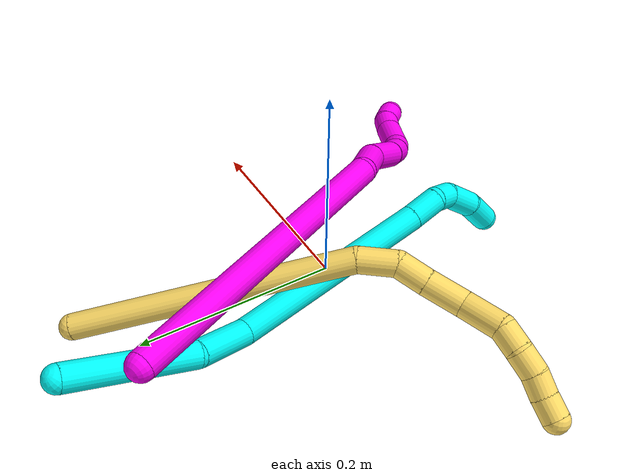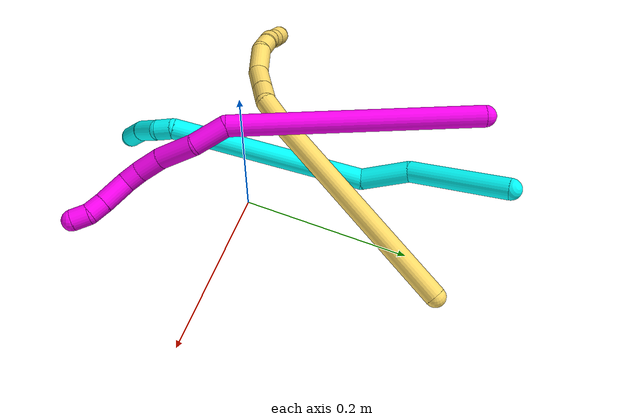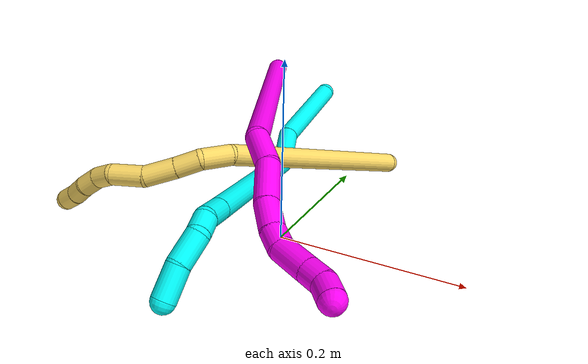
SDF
<sdf version="1.7">
 <world name="default">
  <model name="3">
   <static>0</static>
   <link name="3">
    <collision name="collision-cylinder-e_1_1_4">
     <pose>-0.000937 -0.038021 -0.045447 2.44493 -0.015808 -0.043526</pose>
     <geometry><cylinder><radius>0.0125</radius><length>0.118523</length></cylinder></geometry>
     <surface>
      <friction><ode><mu>1.16</mu><mu2>1.16</mu2><slip1>0</slip1><slip2>0</slip2></ode></friction>
      <contact><ode><kp>1e+06</kp><kd>1</kd><max_vel>0</max_vel><min_depth>0.001</min_depth></ode></contact>
     </surface>
    </collision>
    <visual name="visual-cylinder-e_1_1_4">
     <pose>-0.000937 -0.038021 -0.045447 2.44493 -0.015808 -0.043526</pose>
     <geometry><cylinder><radius>0.0125</radius><length>0.118523</length></cylinder></geometry>
     <material><ambient>0.003922 1 0.996078 1</ambient></material>
    </visual>
    <collision name="collision-cylinder-e_2_4_5">
     <pose>0.008036 -0.092877 -0.112702 2.48419 0.345266 0.945183</pose>
     <geometry><cylinder><radius>0.0125</radius><length>0.058556</length></cylinder></geometry>
     <surface>
      <friction><ode><mu>1.16</mu><mu2>1.16</mu2><slip1>0</slip1><slip2>0</slip2></ode></friction>
      <contact><ode><kp>1e+06</kp><kd>1</kd><max_vel>0</max_vel><min_depth>0.001</min_depth></ode></contact>
     </surface>
    </collision>
    <visual name="visual-cylinder-e_2_4_5">
     <pose>0.008036 -0.092877 -0.112702 2.48419 0.345266 0.945183</pose>
     <geometry><cylinder><radius>0.0125</radius><length>0.058556</length></cylinder></geometry>
     <material><ambient>0.003922 1 0.996078 1</ambient></material>
    </visual>
    <collision name="collision-cylinder-e_3_5_6">
     <pose>0.030408 -0.200261 -0.176961 2.00918 0.12399 0.194699</pose>
     <geometry><cylinder><radius>0.0125</radius><length>0.201559</length></cylinder></geometry>
     <surface>
      <friction><ode><mu>1.16</mu><mu2>1.16</mu2><slip1>0</slip1><slip2>0</slip2></ode></friction>
      <contact><ode><kp>1e+06</kp><kd>1</kd><max_vel>0</max_vel><min_depth>0.001</min_depth></ode></contact>
     </surface>
    </collision>
    <visual name="visual-cylinder-e_3_5_6">
     <pose>0.030408 -0.200261 -0.176961 2.00918 0.12399 0.194699</pose>
     <geometry><cylinder><radius>0.0125</radius><length>0.201559</length></cylinder></geometry>
     <material><ambient>0.003922 1 0.996078 1</ambient></material>
    </visual>
    <collision name="collision-cylinder-e_4_6_7">
     <pose>0.045334 -0.305627 -0.225452 1.95795 0.15269 0.226617</pose>
     <geometry><cylinder><radius>0.0125</radius><length>0.032379</length></cylinder></geometry>
     <surface>
      <friction><ode><mu>1.16</mu><mu2>1.16</mu2><slip1>0</slip1><slip2>0</slip2></ode></friction>
      <contact><ode><kp>1e+06</kp><kd>1</kd><max_vel>0</max_vel><min_depth>0.001</min_depth></ode></contact>
     </surface>
    </collision>
    <visual name="visual-cylinder-e_4_6_7">
     <pose>0.045334 -0.305627 -0.225452 1.95795 0.15269 0.226617</pose>
     <geometry><cylinder><radius>0.0125</radius><length>0.032379</length></cylinder></geometry>
     <material><ambient>0.003922 1 0.996078 1</ambient></material>
    </visual>
    <collision name="collision-cylinder-e_5_7_8">
     <pose>0.050495 -0.327089 -0.239216 2.43105 0.258946 0.675014</pose>
     <geometry><cylinder><radius>0.0125</radius><length>0.021079</length></cylinder></geometry>
     <surface>
      <friction><ode><mu>1.16</mu><mu2>1.16</mu2><slip1>0</slip1><slip2>0</slip2></ode></friction>
      <contact><ode><kp>1e+06</kp><kd>1</kd><max_vel>0</max_vel><min_depth>0.001</min_depth></ode></contact>
     </surface>
    </collision>
    <visual name="visual-cylinder-e_5_7_8">
     <pose>0.050495 -0.327089 -0.239216 2.43105 0.258946 0.675014</pose>
     <geometry><cylinder><radius>0.0125</radius><length>0.021079</length></cylinder></geometry>
     <material><ambient>0.003922 1 0.996078 1</ambient></material>
    </visual>
    <collision name="collision-cylinder-e_6_8_9">
     <pose>0.052001 -0.33937 -0.262785 2.79987 -0.070797 -0.404866</pose>
     <geometry><cylinder><radius>0.0125</radius><length>0.033722</length></cylinder></geometry>
     <surface>
      <friction><ode><mu>1.16</mu><mu2>1.16</mu2><slip1>0</slip1><slip2>0</slip2></ode></friction>
      <contact><ode><kp>1e+06</kp><kd>1</kd><max_vel>0</max_vel><min_depth>0.001</min_depth></ode></contact>
     </surface>
    </collision>
    <visual name="visual-cylinder-e_6_8_9">
     <pose>0.052001 -0.33937 -0.262785 2.79987 -0.070797 -0.404866</pose>
     <geometry><cylinder><radius>0.0125</radius><length>0.033722</length></cylinder></geometry>
     <material><ambient>0.003922 1 0.996078 1</ambient></material>
    </visual>
    <collision name="collision-cylinder-e_7_9_2">
     <pose>0.050962 -0.346876 -0.29562 3.032 0.00895 0.1628</pose>
     <geometry><cylinder><radius>0.0125</radius><length>0.034182</length></cylinder></geometry>
     <surface>
      <friction><ode><mu>1.16</mu><mu2>1.16</mu2><slip1>0</slip1><slip2>0</slip2></ode></friction>
      <contact><ode><kp>1e+06</kp><kd>1</kd><max_vel>0</max_vel><min_depth>0.001</min_depth></ode></contact>
     </surface>
    </collision>
    <visual name="visual-cylinder-e_7_9_2">
     <pose>0.050962 -0.346876 -0.29562 3.032 0.00895 0.1628</pose>
     <geometry><cylinder><radius>0.0125</radius><length>0.034182</length></cylinder></geometry>
     <material><ambient>0.003922 1 0.996078 1</ambient></material>
    </visual>
    <collision name="collision-sphere-2">
     <pose>0.051115 -0.348745 -0.312607 0 -0 0</pose>
     <geometry><sphere><radius>0.0125</radius></sphere></geometry>
     <surface>
      <friction><ode><mu>1.16</mu><mu2>1.16</mu2><slip1>0</slip1><slip2>0</slip2></ode></friction>
      <contact><ode><kp>1e+06</kp><kd>1</kd><max_vel>0</max_vel><min_depth>0.001</min_depth></ode></contact>
     </surface>
    </collision>
    <visual name="visual-sphere-2">
     <pose>0.051115 -0.348745 -0.312607 0 -0 0</pose>
     <geometry><sphere><radius>0.0125</radius></sphere></geometry>
     <material><ambient>0.003922 1 0.996078 1</ambient></material>
    </visual>
    <collision name="collision-sphere-9">
     <pose>0.050809 -0.345007 -0.278632 0 -0 0</pose>
     <geometry><sphere><radius>0.0125</radius></sphere></geometry>
     <surface>
      <friction><ode><mu>1.16</mu><mu2>1.16</mu2><slip1>0</slip1><slip2>0</slip2></ode></friction>
      <contact><ode><kp>1e+06</kp><kd>1</kd><max_vel>0</max_vel><min_depth>0.001</min_depth></ode></contact>
     </surface>
    </collision>
    <visual name="visual-sphere-9">
     <pose>0.050809 -0.345007 -0.278632 0 -0 0</pose>
     <geometry><sphere><radius>0.0125</radius></sphere></geometry>
     <material><ambient>0.003922 1 0.996078 1</ambient></material>
    </visual>
    <collision name="collision-sphere-4">
     <pose>-0.001874 -0.076042 -0.090894 0 -0 0</pose>
     <geometry><sphere><radius>0.0125</radius></sphere></geometry>
     <surface>
      <friction><ode><mu>1.16</mu><mu2>1.16</mu2><slip1>0</slip1><slip2>0</slip2></ode></friction>
      <contact><ode><kp>1e+06</kp><kd>1</kd><max_vel>0</max_vel><min_depth>0.001</min_depth></ode></contact>
     </surface>
    </collision>
    <visual name="visual-sphere-4">
     <pose>-0.001874 -0.076042 -0.090894 0 -0 0</pose>
     <geometry><sphere><radius>0.0125</radius></sphere></geometry>
     <material><ambient>0.003922 1 0.996078 1</ambient></material>
    </visual>
    <collision name="collision-sphere-1">
     <geometry><sphere><radius>0.0125</radius></sphere></geometry>
     <surface>
      <friction><ode><mu>1.16</mu><mu2>1.16</mu2><slip1>0</slip1><slip2>0</slip2></ode></friction>
      <contact><ode><kp>1e+06</kp><kd>1</kd><max_vel>0</max_vel><min_depth>0.001</min_depth></ode></contact>
     </surface>
    </collision>
    <visual name="visual-sphere-1">
     <geometry><sphere><radius>0.0125</radius></sphere></geometry>
     <material><ambient>0.003922 1 0.996078 1</ambient></material>
    </visual>
    <collision name="collision-sphere-8">
     <pose>0.053194 -0.333734 -0.246939 0 -0 0</pose>
     <geometry><sphere><radius>0.0125</radius></sphere></geometry>
     <surface>
      <friction><ode><mu>1.16</mu><mu2>1.16</mu2><slip1>0</slip1><slip2>0</slip2></ode></friction>
      <contact><ode><kp>1e+06</kp><kd>1</kd><max_vel>0</max_vel><min_depth>0.001</min_depth></ode></contact>
     </surface>
    </collision>
    <visual name="visual-sphere-8">
     <pose>0.053194 -0.333734 -0.246939 0 -0 0</pose>
     <geometry><sphere><radius>0.0125</radius></sphere></geometry>
     <material><ambient>0.003922 1 0.996078 1</ambient></material>
    </visual>
    <collision name="collision-sphere-5">
     <pose>0.017945 -0.109712 -0.13451 0 -0 0</pose>
     <geometry><sphere><radius>0.0125</radius></sphere></geometry>
     <surface>
      <friction><ode><mu>1.16</mu><mu2>1.16</mu2><slip1>0</slip1><slip2>0</slip2></ode></friction>
      <contact><ode><kp>1e+06</kp><kd>1</kd><max_vel>0</max_vel><min_depth>0.001</min_depth></ode></contact>
     </surface>
    </collision>
    <visual name="visual-sphere-5">
     <pose>0.017945 -0.109712 -0.13451 0 -0 0</pose>
     <geometry><sphere><radius>0.0125</radius></sphere></geometry>
     <material><ambient>0.003922 1 0.996078 1</ambient></material>
    </visual>
    <collision name="collision-sphere-6">
     <pose>0.042872 -0.29081 -0.219411 0 -0 0</pose>
     <geometry><sphere><radius>0.0125</radius></sphere></geometry>
     <surface>
      <friction><ode><mu>1.16</mu><mu2>1.16</mu2><slip1>0</slip1><slip2>0</slip2></ode></friction>
      <contact><ode><kp>1e+06</kp><kd>1</kd><max_vel>0</max_vel><min_depth>0.001</min_depth></ode></contact>
     </surface>
    </collision>
    <visual name="visual-sphere-6">
     <pose>0.042872 -0.29081 -0.219411 0 -0 0</pose>
     <geometry><sphere><radius>0.0125</radius></sphere></geometry>
     <material><ambient>0.003922 1 0.996078 1</ambient></material>
    </visual>
    <collision name="collision-sphere-7">
     <pose>0.047796 -0.320444 -0.231494 0 -0 0</pose>
     <geometry><sphere><radius>0.0125</radius></sphere></geometry>
     <surface>
      <friction><ode><mu>1.16</mu><mu2>1.16</mu2><slip1>0</slip1><slip2>0</slip2></ode></friction>
      <contact><ode><kp>1e+06</kp><kd>1</kd><max_vel>0</max_vel><min_depth>0.001</min_depth></ode></contact>
     </surface>
    </collision>
    <visual name="visual-sphere-7">
     <pose>0.047796 -0.320444 -0.231494 0 -0 0</pose>
     <geometry><sphere><radius>0.0125</radius></sphere></geometry>
     <material><ambient>0.003922 1 0.996078 1</ambient></material>
    </visual>
    <inertial>
     <pose>0.025033 -0.180802 -0.157926 0 -0 0</pose>
     <mass>0.5</mass>
     <inertia>
      <ixx>0.000985</ixx>
      <ixy>0</ixy>
      <ixz>0</ixz>
      <iyy>-0.000284</iyy>
      <iyz>0</iyz>
      <izz>0.000615</izz>
     </inertia>
    </inertial>
   </link>
   <pose>-0.074585 0.28805 0.088747 -0.574934 0.095628 0.00318</pose>
  </model>
  <model name="5">
   <static>0</static>
   <link name="5">
    <collision name="collision-cylinder-e_1_1_4">
     <pose>-0.081975 -0.090489 0.055603 1.0198 -0.657336 -0.37691</pose>
     <geometry><cylinder><radius>0.0125</radius><length>0.268327</length></cylinder></geometry>
     <surface>
      <friction><ode><mu>1.16</mu><mu2>1.16</mu2><slip1>0</slip1><slip2>0</slip2></ode></friction>
      <contact><ode><kp>1e+06</kp><kd>1</kd><max_vel>0</max_vel><min_depth>0.001</min_depth></ode></contact>
     </surface>
    </collision>
    <visual name="visual-cylinder-e_1_1_4">
     <pose>-0.081975 -0.090489 0.055603 1.0198 -0.657336 -0.37691</pose>
     <geometry><cylinder><radius>0.0125</radius><length>0.268327</length></cylinder></geometry>
     <material><ambient>1 0.858824 0.4 1</ambient></material>
    </visual>
    <collision name="collision-cylinder-e_2_4_5">
     <pose>-0.178132 -0.192264 0.113654 1.35719 -0.887354 -0.731949</pose>
     <geometry><cylinder><radius>0.0125</radius><length>0.036579</length></cylinder></geometry>
     <surface>
      <friction><ode><mu>1.16</mu><mu2>1.16</mu2><slip1>0</slip1><slip2>0</slip2></ode></friction>
      <contact><ode><kp>1e+06</kp><kd>1</kd><max_vel>0</max_vel><min_depth>0.001</min_depth></ode></contact>
     </surface>
    </collision>
    <visual name="visual-cylinder-e_2_4_5">
     <pose>-0.178132 -0.192264 0.113654 1.35719 -0.887354 -0.731949</pose>
     <geometry><cylinder><radius>0.0125</radius><length>0.036579</length></cylinder></geometry>
     <material><ambient>1 0.858824 0.4 1</ambient></material>
    </visual>
    <collision name="collision-cylinder-e_3_5_6">
     <pose>-0.205555 -0.208934 0.112405 2.17261 -1.11258 -1.7367</pose>
     <geometry><cylinder><radius>0.0125</radius><length>0.029528</length></cylinder></geometry>
     <surface>
      <friction><ode><mu>1.16</mu><mu2>1.16</mu2><slip1>0</slip1><slip2>0</slip2></ode></friction>
      <contact><ode><kp>1e+06</kp><kd>1</kd><max_vel>0</max_vel><min_depth>0.001</min_depth></ode></contact>
     </surface>
    </collision>
    <visual name="visual-cylinder-e_3_5_6">
     <pose>-0.205555 -0.208934 0.112405 2.17261 -1.11258 -1.7367</pose>
     <geometry><cylinder><radius>0.0125</radius><length>0.029528</length></cylinder></geometry>
     <material><ambient>1 0.858824 0.4 1</ambient></material>
    </visual>
    <collision name="collision-cylinder-e_4_6_7">
     <pose>-0.235911 -0.22116 0.105073 2.05906 -1.14576 -1.64119</pose>
     <geometry><cylinder><radius>0.0125</radius><length>0.037574</length></cylinder></geometry>
     <surface>
      <friction><ode><mu>1.16</mu><mu2>1.16</mu2><slip1>0</slip1><slip2>0</slip2></ode></friction>
      <contact><ode><kp>1e+06</kp><kd>1</kd><max_vel>0</max_vel><min_depth>0.001</min_depth></ode></contact>
     </surface>
    </collision>
    <visual name="visual-cylinder-e_4_6_7">
     <pose>-0.235911 -0.22116 0.105073 2.05906 -1.14576 -1.64119</pose>
     <geometry><cylinder><radius>0.0125</radius><length>0.037574</length></cylinder></geometry>
     <material><ambient>1 0.858824 0.4 1</ambient></material>
    </visual>
    <collision name="collision-cylinder-e_5_7_8">
     <pose>-0.272701 -0.229727 0.101492 1.54013 -1.48329 -1.45277</pose>
     <geometry><cylinder><radius>0.0125</radius><length>0.039501</length></cylinder></geometry>
     <surface>
      <friction><ode><mu>1.16</mu><mu2>1.16</mu2><slip1>0</slip1><slip2>0</slip2></ode></friction>
      <contact><ode><kp>1e+06</kp><kd>1</kd><max_vel>0</max_vel><min_depth>0.001</min_depth></ode></contact>
     </surface>
    </collision>
    <visual name="visual-cylinder-e_5_7_8">
     <pose>-0.272701 -0.229727 0.101492 1.54013 -1.48329 -1.45277</pose>
     <geometry><cylinder><radius>0.0125</radius><length>0.039501</length></cylinder></geometry>
     <material><ambient>1 0.858824 0.4 1</ambient></material>
    </visual>
    <collision name="collision-cylinder-e_6_8_9">
     <pose>-0.302979 -0.230561 0.097118 -2.94304 -1.16816 2.84248</pose>
     <geometry><cylinder><radius>0.0125</radius><length>0.02305</length></cylinder></geometry>
     <surface>
      <friction><ode><mu>1.16</mu><mu2>1.16</mu2><slip1>0</slip1><slip2>0</slip2></ode></friction>
      <contact><ode><kp>1e+06</kp><kd>1</kd><max_vel>0</max_vel><min_depth>0.001</min_depth></ode></contact>
     </surface>
    </collision>
    <visual name="visual-cylinder-e_6_8_9">
     <pose>-0.302979 -0.230561 0.097118 -2.94304 -1.16816 2.84248</pose>
     <geometry><cylinder><radius>0.0125</radius><length>0.02305</length></cylinder></geometry>
     <material><ambient>1 0.858824 0.4 1</ambient></material>
    </visual>
    <collision name="collision-cylinder-e_7_9_10">
     <pose>-0.323014 -0.231083 0.086217 2.92671 -0.958329 -2.73221</pose>
     <geometry><cylinder><radius>0.0125</radius><length>0.023053</length></cylinder></geometry>
     <surface>
      <friction><ode><mu>1.16</mu><mu2>1.16</mu2><slip1>0</slip1><slip2>0</slip2></ode></friction>
      <contact><ode><kp>1e+06</kp><kd>1</kd><max_vel>0</max_vel><min_depth>0.001</min_depth></ode></contact>
     </surface>
    </collision>
    <visual name="visual-cylinder-e_7_9_10">
     <pose>-0.323014 -0.231083 0.086217 2.92671 -0.958329 -2.73221</pose>
     <geometry><cylinder><radius>0.0125</radius><length>0.023053</length></cylinder></geometry>
     <material><ambient>1 0.858824 0.4 1</ambient></material>
    </visual>
    <collision name="collision-cylinder-e_8_10_11">
     <pose>-0.340186 -0.232298 0.072662 -3.11363 -0.829641 3.07811</pose>
     <geometry><cylinder><radius>0.0125</radius><length>0.020984</length></cylinder></geometry>
     <surface>
      <friction><ode><mu>1.16</mu><mu2>1.16</mu2><slip1>0</slip1><slip2>0</slip2></ode></friction>
      <contact><ode><kp>1e+06</kp><kd>1</kd><max_vel>0</max_vel><min_depth>0.001</min_depth></ode></contact>
     </surface>
    </collision>
    <visual name="visual-cylinder-e_8_10_11">
     <pose>-0.340186 -0.232298 0.072662 -3.11363 -0.829641 3.07811</pose>
     <geometry><cylinder><radius>0.0125</radius><length>0.020984</length></cylinder></geometry>
     <material><ambient>1 0.858824 0.4 1</ambient></material>
    </visual>
    <collision name="collision-cylinder-e_9_11_2">
     <pose>-0.356724 -0.231374 0.059531 -3.02209 -0.965118 2.91418</pose>
     <geometry><cylinder><radius>0.0125</radius><length>0.021404</length></cylinder></geometry>
     <surface>
      <friction><ode><mu>1.16</mu><mu2>1.16</mu2><slip1>0</slip1><slip2>0</slip2></ode></friction>
      <contact><ode><kp>1e+06</kp><kd>1</kd><max_vel>0</max_vel><min_depth>0.001</min_depth></ode></contact>
     </surface>
    </collision>
    <visual name="visual-cylinder-e_9_11_2">
     <pose>-0.356724 -0.231374 0.059531 -3.02209 -0.965118 2.91418</pose>
     <geometry><cylinder><radius>0.0125</radius><length>0.021404</length></cylinder></geometry>
     <material><ambient>1 0.858824 0.4 1</ambient></material>
    </visual>
    <collision name="collision-sphere-2">
     <pose>-0.365522 -0.230647 0.053482 0 -0 0</pose>
     <geometry><sphere><radius>0.0125</radius></sphere></geometry>
     <surface>
      <friction><ode><mu>1.16</mu><mu2>1.16</mu2><slip1>0</slip1><slip2>0</slip2></ode></friction>
      <contact><ode><kp>1e+06</kp><kd>1</kd><max_vel>0</max_vel><min_depth>0.001</min_depth></ode></contact>
     </surface>
    </collision>
    <visual name="visual-sphere-2">
     <pose>-0.365522 -0.230647 0.053482 0 -0 0</pose>
     <geometry><sphere><radius>0.0125</radius></sphere></geometry>
     <material><ambient>1 0.858824 0.4 1</ambient></material>
    </visual>
    <collision name="collision-sphere-11">
     <pose>-0.347925 -0.2321 0.065581 0 -0 0</pose>
     <geometry><sphere><radius>0.0125</radius></sphere></geometry>
     <surface>
      <friction><ode><mu>1.16</mu><mu2>1.16</mu2><slip1>0</slip1><slip2>0</slip2></ode></friction>
      <contact><ode><kp>1e+06</kp><kd>1</kd><max_vel>0</max_vel><min_depth>0.001</min_depth></ode></contact>
     </surface>
    </collision>
    <visual name="visual-sphere-11">
     <pose>-0.347925 -0.2321 0.065581 0 -0 0</pose>
     <geometry><sphere><radius>0.0125</radius></sphere></geometry>
     <material><ambient>1 0.858824 0.4 1</ambient></material>
    </visual>
    <collision name="collision-sphere-10">
     <pose>-0.332446 -0.232496 0.079743 0 -0 0</pose>
     <geometry><sphere><radius>0.0125</radius></sphere></geometry>
     <surface>
      <friction><ode><mu>1.16</mu><mu2>1.16</mu2><slip1>0</slip1><slip2>0</slip2></ode></friction>
      <contact><ode><kp>1e+06</kp><kd>1</kd><max_vel>0</max_vel><min_depth>0.001</min_depth></ode></contact>
     </surface>
    </collision>
    <visual name="visual-sphere-10">
     <pose>-0.332446 -0.232496 0.079743 0 -0 0</pose>
     <geometry><sphere><radius>0.0125</radius></sphere></geometry>
     <material><ambient>1 0.858824 0.4 1</ambient></material>
    </visual>
    <collision name="collision-sphere-9">
     <pose>-0.313583 -0.22967 0.092691 0 -0 0</pose>
     <geometry><sphere><radius>0.0125</radius></sphere></geometry>
     <surface>
      <friction><ode><mu>1.16</mu><mu2>1.16</mu2><slip1>0</slip1><slip2>0</slip2></ode></friction>
      <contact><ode><kp>1e+06</kp><kd>1</kd><max_vel>0</max_vel><min_depth>0.001</min_depth></ode></contact>
     </surface>
    </collision>
    <visual name="visual-sphere-9">
     <pose>-0.313583 -0.22967 0.092691 0 -0 0</pose>
     <geometry><sphere><radius>0.0125</radius></sphere></geometry>
     <material><ambient>1 0.858824 0.4 1</ambient></material>
    </visual>
    <collision name="collision-sphere-4">
     <pose>-0.163951 -0.180978 0.111206 0 -0 0</pose>
     <geometry><sphere><radius>0.0125</radius></sphere></geometry>
     <surface>
      <friction><ode><mu>1.16</mu><mu2>1.16</mu2><slip1>0</slip1><slip2>0</slip2></ode></friction>
      <contact><ode><kp>1e+06</kp><kd>1</kd><max_vel>0</max_vel><min_depth>0.001</min_depth></ode></contact>
     </surface>
    </collision>
    <visual name="visual-sphere-4">
     <pose>-0.163951 -0.180978 0.111206 0 -0 0</pose>
     <geometry><sphere><radius>0.0125</radius></sphere></geometry>
     <material><ambient>1 0.858824 0.4 1</ambient></material>
    </visual>
    <collision name="collision-sphere-1">
     <geometry><sphere><radius>0.0125</radius></sphere></geometry>
     <surface>
      <friction><ode><mu>1.16</mu><mu2>1.16</mu2><slip1>0</slip1><slip2>0</slip2></ode></friction>
      <contact><ode><kp>1e+06</kp><kd>1</kd><max_vel>0</max_vel><min_depth>0.001</min_depth></ode></contact>
     </surface>
    </collision>
    <visual name="visual-sphere-1">
     <geometry><sphere><radius>0.0125</radius></sphere></geometry>
     <material><ambient>1 0.858824 0.4 1</ambient></material>
    </visual>
    <collision name="collision-sphere-8">
     <pose>-0.292376 -0.231452 0.101545 0 -0 0</pose>
     <geometry><sphere><radius>0.0125</radius></sphere></geometry>
     <surface>
      <friction><ode><mu>1.16</mu><mu2>1.16</mu2><slip1>0</slip1><slip2>0</slip2></ode></friction>
      <contact><ode><kp>1e+06</kp><kd>1</kd><max_vel>0</max_vel><min_depth>0.001</min_depth></ode></contact>
     </surface>
    </collision>
    <visual name="visual-sphere-8">
     <pose>-0.292376 -0.231452 0.101545 0 -0 0</pose>
     <geometry><sphere><radius>0.0125</radius></sphere></geometry>
     <material><ambient>1 0.858824 0.4 1</ambient></material>
    </visual>
    <collision name="collision-sphere-5">
     <pose>-0.192314 -0.203551 0.116102 0 -0 0</pose>
     <geometry><sphere><radius>0.0125</radius></sphere></geometry>
     <surface>
      <friction><ode><mu>1.16</mu><mu2>1.16</mu2><slip1>0</slip1><slip2>0</slip2></ode></friction>
      <contact><ode><kp>1e+06</kp><kd>1</kd><max_vel>0</max_vel><min_depth>0.001</min_depth></ode></contact>
     </surface>
    </collision>
    <visual name="visual-sphere-5">
     <pose>-0.192314 -0.203551 0.116102 0 -0 0</pose>
     <geometry><sphere><radius>0.0125</radius></sphere></geometry>
     <material><ambient>1 0.858824 0.4 1</ambient></material>
    </visual>
    <collision name="collision-sphere-6">
     <pose>-0.218796 -0.214318 0.108707 0 -0 0</pose>
     <geometry><sphere><radius>0.0125</radius></sphere></geometry>
     <surface>
      <friction><ode><mu>1.16</mu><mu2>1.16</mu2><slip1>0</slip1><slip2>0</slip2></ode></friction>
      <contact><ode><kp>1e+06</kp><kd>1</kd><max_vel>0</max_vel><min_depth>0.001</min_depth></ode></contact>
     </surface>
    </collision>
    <visual name="visual-sphere-6">
     <pose>-0.218796 -0.214318 0.108707 0 -0 0</pose>
     <geometry><sphere><radius>0.0125</radius></sphere></geometry>
     <material><ambient>1 0.858824 0.4 1</ambient></material>
    </visual>
    <collision name="collision-sphere-7">
     <pose>-0.253026 -0.228001 0.101439 0 -0 0</pose>
     <geometry><sphere><radius>0.0125</radius></sphere></geometry>
     <surface>
      <friction><ode><mu>1.16</mu><mu2>1.16</mu2><slip1>0</slip1><slip2>0</slip2></ode></friction>
      <contact><ode><kp>1e+06</kp><kd>1</kd><max_vel>0</max_vel><min_depth>0.001</min_depth></ode></contact>
     </surface>
    </collision>
    <visual name="visual-sphere-7">
     <pose>-0.253026 -0.228001 0.101439 0 -0 0</pose>
     <geometry><sphere><radius>0.0125</radius></sphere></geometry>
     <material><ambient>1 0.858824 0.4 1</ambient></material>
    </visual>
    <inertial>
     <pose>-0.166844 -0.150671 0.074757 0 -0 0</pose>
     <mass>0.5</mass>
     <inertia>
      <ixx>0.000684</ixx>
      <ixy>0</ixy>
      <ixz>0</ixz>
      <iyy>0.000627</iyy>
      <iyz>0</iyz>
      <izz>0.00212</izz>
     </inertia>
    </inertial>
   </link>
   <pose>0.042716 0.247164 0.011768 0.22115 -0.005025 0.222896</pose>
  </model>
  <model name="10">
   <static>0</static>
   <link name="10">
    <collision name="collision-cylinder-e_1_1_4">
     <pose>0.001014 0.000245 -0.143882 -3.13989 0.007047 -2.66803</pose>
     <geometry><cylinder><radius>0.0125</radius><length>0.287772</length></cylinder></geometry>
     <surface>
      <friction><ode><mu>1.16</mu><mu2>1.16</mu2><slip1>0</slip1><slip2>0</slip2></ode></friction>
      <contact><ode><kp>1e+06</kp><kd>1</kd><max_vel>0</max_vel><min_depth>0.001</min_depth></ode></contact>
     </surface>
    </collision>
    <visual name="visual-cylinder-e_1_1_4">
     <pose>0.001014 0.000245 -0.143882 -3.13989 0.007047 -2.66803</pose>
     <geometry><cylinder><radius>0.0125</radius><length>0.287772</length></cylinder></geometry>
     <material><ambient>1 0 0.964706 1</ambient></material>
    </visual>
    <collision name="collision-cylinder-e_2_4_5">
     <pose>0.011531 -0.002527 -0.306065 2.97824 0.473496 2.4874</pose>
     <geometry><cylinder><radius>0.0125</radius><length>0.041682</length></cylinder></geometry>
     <surface>
      <friction><ode><mu>1.16</mu><mu2>1.16</mu2><slip1>0</slip1><slip2>0</slip2></ode></friction>
      <contact><ode><kp>1e+06</kp><kd>1</kd><max_vel>0</max_vel><min_depth>0.001</min_depth></ode></contact>
     </surface>
    </collision>
    <visual name="visual-cylinder-e_2_4_5">
     <pose>0.011531 -0.002527 -0.306065 2.97824 0.473496 2.4874</pose>
     <geometry><cylinder><radius>0.0125</radius><length>0.041682</length></cylinder></geometry>
     <material><ambient>1 0 0.964706 1</ambient></material>
    </visual>
    <collision name="collision-cylinder-e_3_5_6">
     <pose>0.030935 -0.001533 -0.344612 -2.94602 0.447257 -2.32716</pose>
     <geometry><cylinder><radius>0.0125</radius><length>0.045782</length></cylinder></geometry>
     <surface>
      <friction><ode><mu>1.16</mu><mu2>1.16</mu2><slip1>0</slip1><slip2>0</slip2></ode></friction>
      <contact><ode><kp>1e+06</kp><kd>1</kd><max_vel>0</max_vel><min_depth>0.001</min_depth></ode></contact>
     </surface>
    </collision>
    <visual name="visual-cylinder-e_3_5_6">
     <pose>0.030935 -0.001533 -0.344612 -2.94602 0.447257 -2.32716</pose>
     <geometry><cylinder><radius>0.0125</radius><length>0.045782</length></cylinder></geometry>
     <material><ambient>1 0 0.964706 1</ambient></material>
    </visual>
    <collision name="collision-cylinder-e_4_6_7">
     <pose>0.048733 0.002368 -0.377386 3.13279 0.562461 3.11112</pose>
     <geometry><cylinder><radius>0.0125</radius><length>0.02962</length></cylinder></geometry>
     <surface>
      <friction><ode><mu>1.16</mu><mu2>1.16</mu2><slip1>0</slip1><slip2>0</slip2></ode></friction>
      <contact><ode><kp>1e+06</kp><kd>1</kd><max_vel>0</max_vel><min_depth>0.001</min_depth></ode></contact>
     </surface>
    </collision>
    <visual name="visual-cylinder-e_4_6_7">
     <pose>0.048733 0.002368 -0.377386 3.13279 0.562461 3.11112</pose>
     <geometry><cylinder><radius>0.0125</radius><length>0.02962</length></cylinder></geometry>
     <material><ambient>1 0 0.964706 1</ambient></material>
    </visual>
    <collision name="collision-cylinder-e_5_7_8">
     <pose>0.062122 0.000214 -0.398106 2.89718 0.576677 2.35642</pose>
     <geometry><cylinder><radius>0.0125</radius><length>0.020144</length></cylinder></geometry>
     <surface>
      <friction><ode><mu>1.16</mu><mu2>1.16</mu2><slip1>0</slip1><slip2>0</slip2></ode></friction>
      <contact><ode><kp>1e+06</kp><kd>1</kd><max_vel>0</max_vel><min_depth>0.001</min_depth></ode></contact>
     </surface>
    </collision>
    <visual name="visual-cylinder-e_5_7_8">
     <pose>0.062122 0.000214 -0.398106 2.89718 0.576677 2.35642</pose>
     <geometry><cylinder><radius>0.0125</radius><length>0.020144</length></cylinder></geometry>
     <material><ambient>1 0 0.964706 1</ambient></material>
    </visual>
    <collision name="collision-cylinder-e_6_8_9">
     <pose>0.075344 -0.011377 -0.418718 2.48617 0.45839 1.20283</pose>
     <geometry><cylinder><radius>0.0125</radius><length>0.034939</length></cylinder></geometry>
     <surface>
      <friction><ode><mu>1.16</mu><mu2>1.16</mu2><slip1>0</slip1><slip2>0</slip2></ode></friction>
      <contact><ode><kp>1e+06</kp><kd>1</kd><max_vel>0</max_vel><min_depth>0.001</min_depth></ode></contact>
     </surface>
    </collision>
    <visual name="visual-cylinder-e_6_8_9">
     <pose>0.075344 -0.011377 -0.418718 2.48617 0.45839 1.20283</pose>
     <geometry><cylinder><radius>0.0125</radius><length>0.034939</length></cylinder></geometry>
     <material><ambient>1 0 0.964706 1</ambient></material>
    </visual>
    <collision name="collision-cylinder-e_7_9_10">
     <pose>0.086852 -0.026392 -0.438611 2.51008 0.387349 1.08139</pose>
     <geometry><cylinder><radius>0.0125</radius><length>0.020001</length></cylinder></geometry>
     <surface>
      <friction><ode><mu>1.16</mu><mu2>1.16</mu2><slip1>0</slip1><slip2>0</slip2></ode></friction>
      <contact><ode><kp>1e+06</kp><kd>1</kd><max_vel>0</max_vel><min_depth>0.001</min_depth></ode></contact>
     </surface>
    </collision>
    <visual name="visual-cylinder-e_7_9_10">
     <pose>0.086852 -0.026392 -0.438611 2.51008 0.387349 1.08139</pose>
     <geometry><cylinder><radius>0.0125</radius><length>0.020001</length></cylinder></geometry>
     <material><ambient>1 0 0.964706 1</ambient></material>
    </visual>
    <collision name="collision-cylinder-e_8_10_2">
     <pose>0.093067 -0.034028 -0.45557 2.91669 0.245533 1.65926</pose>
     <geometry><cylinder><radius>0.0125</radius><length>0.020062</length></cylinder></geometry>
     <surface>
      <friction><ode><mu>1.16</mu><mu2>1.16</mu2><slip1>0</slip1><slip2>0</slip2></ode></friction>
      <contact><ode><kp>1e+06</kp><kd>1</kd><max_vel>0</max_vel><min_depth>0.001</min_depth></ode></contact>
     </surface>
    </collision>
    <visual name="visual-cylinder-e_8_10_2">
     <pose>0.093067 -0.034028 -0.45557 2.91669 0.245533 1.65926</pose>
     <geometry><cylinder><radius>0.0125</radius><length>0.020062</length></cylinder></geometry>
     <material><ambient>1 0 0.964706 1</ambient></material>
    </visual>
    <collision name="collision-sphere-2">
     <pose>0.095506 -0.036198 -0.465055 0 -0 0</pose>
     <geometry><sphere><radius>0.0125</radius></sphere></geometry>
     <surface>
      <friction><ode><mu>1.16</mu><mu2>1.16</mu2><slip1>0</slip1><slip2>0</slip2></ode></friction>
      <contact><ode><kp>1e+06</kp><kd>1</kd><max_vel>0</max_vel><min_depth>0.001</min_depth></ode></contact>
     </surface>
    </collision>
    <visual name="visual-sphere-2">
     <pose>0.095506 -0.036198 -0.465055 0 -0 0</pose>
     <geometry><sphere><radius>0.0125</radius></sphere></geometry>
     <material><ambient>1 0 0.964706 1</ambient></material>
    </visual>
    <collision name="collision-sphere-10">
     <pose>0.090629 -0.031858 -0.446085 0 -0 0</pose>
     <geometry><sphere><radius>0.0125</radius></sphere></geometry>
     <surface>
      <friction><ode><mu>1.16</mu><mu2>1.16</mu2><slip1>0</slip1><slip2>0</slip2></ode></friction>
      <contact><ode><kp>1e+06</kp><kd>1</kd><max_vel>0</max_vel><min_depth>0.001</min_depth></ode></contact>
     </surface>
    </collision>
    <visual name="visual-sphere-10">
     <pose>0.090629 -0.031858 -0.446085 0 -0 0</pose>
     <geometry><sphere><radius>0.0125</radius></sphere></geometry>
     <material><ambient>1 0 0.964706 1</ambient></material>
    </visual>
    <collision name="collision-sphere-9">
     <pose>0.083074 -0.020926 -0.431137 0 -0 0</pose>
     <geometry><sphere><radius>0.0125</radius></sphere></geometry>
     <surface>
      <friction><ode><mu>1.16</mu><mu2>1.16</mu2><slip1>0</slip1><slip2>0</slip2></ode></friction>
      <contact><ode><kp>1e+06</kp><kd>1</kd><max_vel>0</max_vel><min_depth>0.001</min_depth></ode></contact>
     </surface>
    </collision>
    <visual name="visual-sphere-9">
     <pose>0.083074 -0.020926 -0.431137 0 -0 0</pose>
     <geometry><sphere><radius>0.0125</radius></sphere></geometry>
     <material><ambient>1 0 0.964706 1</ambient></material>
    </visual>
    <collision name="collision-sphere-4">
     <pose>0.002028 0.000489 -0.287764 0 -0 0</pose>
     <geometry><sphere><radius>0.0125</radius></sphere></geometry>
     <surface>
      <friction><ode><mu>1.16</mu><mu2>1.16</mu2><slip1>0</slip1><slip2>0</slip2></ode></friction>
      <contact><ode><kp>1e+06</kp><kd>1</kd><max_vel>0</max_vel><min_depth>0.001</min_depth></ode></contact>
     </surface>
    </collision>
    <visual name="visual-sphere-4">
     <pose>0.002028 0.000489 -0.287764 0 -0 0</pose>
     <geometry><sphere><radius>0.0125</radius></sphere></geometry>
     <material><ambient>1 0 0.964706 1</ambient></material>
    </visual>
    <collision name="collision-sphere-1">
     <geometry><sphere><radius>0.0125</radius></sphere></geometry>
     <surface>
      <friction><ode><mu>1.16</mu><mu2>1.16</mu2><slip1>0</slip1><slip2>0</slip2></ode></friction>
      <contact><ode><kp>1e+06</kp><kd>1</kd><max_vel>0</max_vel><min_depth>0.001</min_depth></ode></contact>
     </surface>
    </collision>
    <visual name="visual-sphere-1">
     <geometry><sphere><radius>0.0125</radius></sphere></geometry>
     <material><ambient>1 0 0.964706 1</ambient></material>
    </visual>
    <collision name="collision-sphere-8">
     <pose>0.067614 -0.001829 -0.406298 0 -0 0</pose>
     <geometry><sphere><radius>0.0125</radius></sphere></geometry>
     <surface>
      <friction><ode><mu>1.16</mu><mu2>1.16</mu2><slip1>0</slip1><slip2>0</slip2></ode></friction>
      <contact><ode><kp>1e+06</kp><kd>1</kd><max_vel>0</max_vel><min_depth>0.001</min_depth></ode></contact>
     </surface>
    </collision>
    <visual name="visual-sphere-8">
     <pose>0.067614 -0.001829 -0.406298 0 -0 0</pose>
     <geometry><sphere><radius>0.0125</radius></sphere></geometry>
     <material><ambient>1 0 0.964706 1</ambient></material>
    </visual>
    <collision name="collision-sphere-5">
     <pose>0.021035 -0.005544 -0.324366 0 -0 0</pose>
     <geometry><sphere><radius>0.0125</radius></sphere></geometry>
     <surface>
      <friction><ode><mu>1.16</mu><mu2>1.16</mu2><slip1>0</slip1><slip2>0</slip2></ode></friction>
      <contact><ode><kp>1e+06</kp><kd>1</kd><max_vel>0</max_vel><min_depth>0.001</min_depth></ode></contact>
     </surface>
    </collision>
    <visual name="visual-sphere-5">
     <pose>0.021035 -0.005544 -0.324366 0 -0 0</pose>
     <geometry><sphere><radius>0.0125</radius></sphere></geometry>
     <material><ambient>1 0 0.964706 1</ambient></material>
    </visual>
    <collision name="collision-sphere-6">
     <pose>0.040835 0.002478 -0.364858 0 -0 0</pose>
     <geometry><sphere><radius>0.0125</radius></sphere></geometry>
     <surface>
      <friction><ode><mu>1.16</mu><mu2>1.16</mu2><slip1>0</slip1><slip2>0</slip2></ode></friction>
      <contact><ode><kp>1e+06</kp><kd>1</kd><max_vel>0</max_vel><min_depth>0.001</min_depth></ode></contact>
     </surface>
    </collision>
    <visual name="visual-sphere-6">
     <pose>0.040835 0.002478 -0.364858 0 -0 0</pose>
     <geometry><sphere><radius>0.0125</radius></sphere></geometry>
     <material><ambient>1 0 0.964706 1</ambient></material>
    </visual>
    <collision name="collision-sphere-7">
     <pose>0.05663 0.002257 -0.389914 0 -0 0</pose>
     <geometry><sphere><radius>0.0125</radius></sphere></geometry>
     <surface>
      <friction><ode><mu>1.16</mu><mu2>1.16</mu2><slip1>0</slip1><slip2>0</slip2></ode></friction>
      <contact><ode><kp>1e+06</kp><kd>1</kd><max_vel>0</max_vel><min_depth>0.001</min_depth></ode></contact>
     </surface>
    </collision>
    <visual name="visual-sphere-7">
     <pose>0.05663 0.002257 -0.389914 0 -0 0</pose>
     <geometry><sphere><radius>0.0125</radius></sphere></geometry>
     <material><ambient>1 0 0.964706 1</ambient></material>
    </visual>
    <inertial>
     <pose>0.02224 -0.003277 -0.243357 0 -0 0</pose>
     <mass>0.5</mass>
     <inertia>
      <ixx>-0.002688</ixx>
      <ixy>0</ixy>
      <ixz>0</ixz>
      <iyy>0.000887</iyy>
      <iyz>0</iyz>
      <izz>-6.4e-05</izz>
     </inertia>
    </inertial>
   </link>
   <pose>-0.129461 0.236847 0.129882 -1.541 1.07395 0.431356</pose>
  </model>
 </world>
</sdf>
